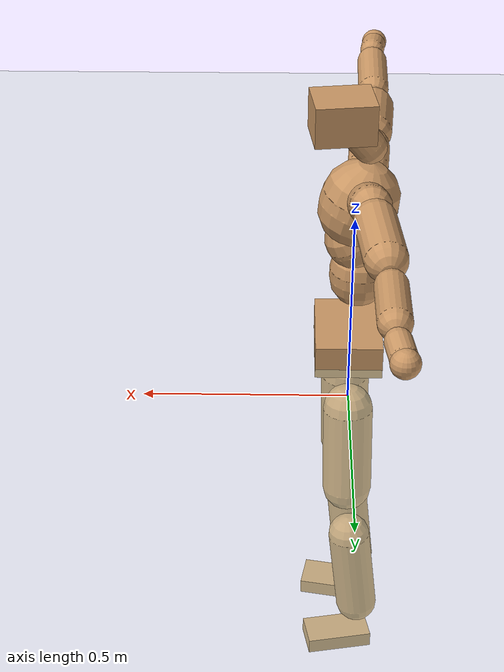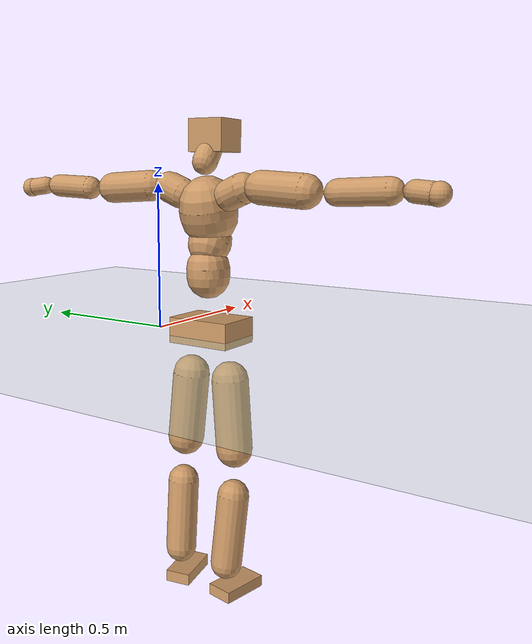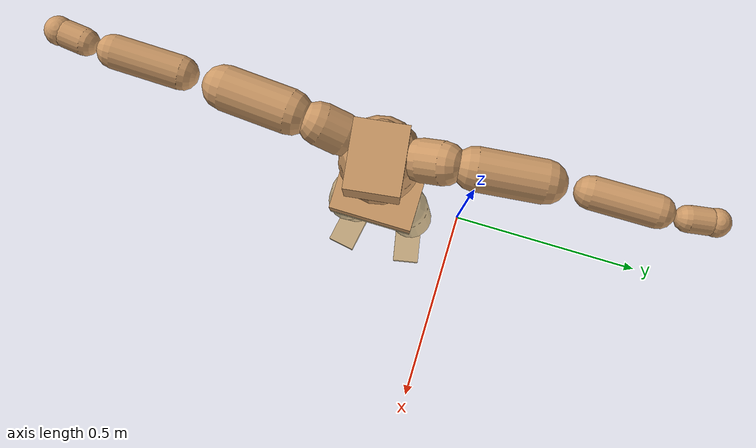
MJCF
<mujoco model="humanoid">
  <compiler coordinate="local" angle="radian"/>
  <default>
    <joint damping="0.0" armature="0.01" stiffness="0.0" limited="true"/>
    <geom conaffinity="1" condim="3" contype="7" margin="0.001" rgba="0.8 0.6 .4 1"/>
  </default>
  <asset>
    <texture type="skybox" builtin="gradient" rgb1=".4 .5 .6" rgb2="0 0 0" width="100" height="100"/>
    <texture builtin="flat" height="1278" mark="cross" markrgb="1 1 1" name="texgeom" random="0.01" rgb1="0.8 0.6 0.4" rgb2="0.8 0.6 0.4" type="cube" width="127"/>
    <texture builtin="checker" height="100" name="texplane" rgb1="0 0 0" rgb2="0.8 0.8 0.8" type="2d" width="100"/>
    <material name="MatPlane" reflectance="0.5" shininess="1" specular="1" texrepeat="60 60" texture="texplane"/>
    <material name="geom" texture="texgeom" texuniform="true"/>
  </asset>
  <worldbody>
    <light cutoff="100" diffuse="1 1 1" dir="-0 0 -1.3" directional="true" exponent="1" pos="0 0 1.3" specular=".1 .1 .1"/>
    <geom conaffinity="1" condim="3" name="floor" pos="0 0 0" rgba="0.8 0.9 0.8 1" size="100 100 .2" type="plane" material="MatPlane"/>
    <body name="Pelvis" pos="0.0006 -0.2249 0.0309">
      <freejoint name="Pelvis"/>
      <geom type="box" contype="1" conaffinity="1" density="500" pos="-0.0063 0.0000 -0.0135" size="0.0845 0.1135 0.0438" quat="1.0000 0.0000 0.0000 -0.0020" name="Pelvis"/>
      <body name="L_Hip" pos="-0.0083 0.0736 -0.097">
        <joint name="L_Hip_x" type="hinge" pos="0 0 0" axis="1 0 0" stiffness="800" damping="80" armature="0.02" range="-180.0000 180.0000"/>
        <joint name="L_Hip_y" type="hinge" pos="0 0 0" axis="0 1 0" stiffness="800" damping="80" armature="0.02" range="-180.0000 180.0000"/>
        <joint name="L_Hip_z" type="hinge" pos="0 0 0" axis="0 0 1" stiffness="800" damping="80" armature="0.02" range="-180.0000 180.0000"/>
        <geom type="capsule" contype="1" conaffinity="1" density="500" fromto="-0.0013 0.0071 -0.0801 -0.0053 0.0284 -0.3205" size="0.0639" name="L_Hip"/>
        <body name="L_Knee" pos="-0.0067 0.0355 -0.4007">
          <joint name="L_Knee_x" type="hinge" pos="0 0 0" axis="1 0 0" stiffness="800" damping="80" armature="0.02" range="-180.0000 180.0000"/>
          <joint name="L_Knee_y" type="hinge" pos="0 0 0" axis="0 1 0" stiffness="800" damping="80" armature="0.02" range="-180.0000 180.0000"/>
          <joint name="L_Knee_z" type="hinge" pos="0 0 0" axis="0 0 1" stiffness="800" damping="80" armature="0.02" range="-180.0000 180.0000"/>
          <geom type="capsule" contype="1" conaffinity="1" density="500" fromto="-0.0094 -0.0025 -0.0846 -0.0376 -0.0099 -0.3384" size="0.055" name="L_Knee"/>
          <body name="L_Ankle" pos="-0.0469 -0.0124 -0.4229">
            <joint name="L_Ankle_x" type="hinge" pos="0 0 0" axis="1 0 0" stiffness="800" damping="80" armature="0.02" range="-180.0000 180.0000"/>
            <joint name="L_Ankle_y" type="hinge" pos="0 0 0" axis="0 1 0" stiffness="800" damping="80" armature="0.02" range="-180.0000 180.0000"/>
            <joint name="L_Ankle_z" type="hinge" pos="0 0 0" axis="0 0 1" stiffness="800" damping="80" armature="0.02" range="-180.0000 180.0000"/>
            <geom type="box" contype="1" conaffinity="1" density="500" pos="0.0610 0.0115 -0.0294" size="0.0868 0.0456 0.0214" quat="0.9957 0.0000 0.0000 0.0931" name="L_Ankle"/>
            <body name="L_Toe" pos="0.1219 0.023 -0.0588">
              <joint name="L_Toe_x" type="hinge" pos="0 0 0" axis="1 0 0" stiffness="500" damping="50" armature="0.02" range="-180.0000 180.0000"/>
              <joint name="L_Toe_y" type="hinge" pos="0 0 0" axis="0 1 0" stiffness="500" damping="50" armature="0.02" range="-180.0000 180.0000"/>
              <joint name="L_Toe_z" type="hinge" pos="0 0 0" axis="0 0 1" stiffness="500" damping="50" armature="0.02" range="-180.0000 180.0000"/>
              <geom type="box" contype="1" conaffinity="1" density="500" pos="0.0000 0.0000 0.0291" size="0.0009 0.0023 0.0011" quat="0.9950 0.0000 0.0000 0.0994" name="L_Toe"/>
            </body>
          </body>
        </body>
      </body>
      <body name="R_Hip" pos="-0.0048 -0.0704 -0.0964">
        <joint name="R_Hip_x" type="hinge" pos="0 0 0" axis="1 0 0" stiffness="800" damping="80" armature="0.02" range="-180.0000 180.0000"/>
        <joint name="R_Hip_y" type="hinge" pos="0 0 0" axis="0 1 0" stiffness="800" damping="80" armature="0.02" range="-180.0000 180.0000"/>
        <joint name="R_Hip_z" type="hinge" pos="0 0 0" axis="0 0 1" stiffness="800" damping="80" armature="0.02" range="-180.0000 180.0000"/>
        <geom type="capsule" contype="1" conaffinity="1" density="500" fromto="-0.0019 -0.0082 -0.0817 -0.0076 -0.0329 -0.3267" size="0.0631" name="R_Hip"/>
        <body name="R_Knee" pos="-0.0094 -0.0412 -0.4084">
          <joint name="R_Knee_x" type="hinge" pos="0 0 0" axis="1 0 0" stiffness="800" damping="80" armature="0.02" range="-180.0000 180.0000"/>
          <joint name="R_Knee_y" type="hinge" pos="0 0 0" axis="0 1 0" stiffness="800" damping="80" armature="0.02" range="-180.0000 180.0000"/>
          <joint name="R_Knee_z" type="hinge" pos="0 0 0" axis="0 0 1" stiffness="800" damping="80" armature="0.02" range="-180.0000 180.0000"/>
          <geom type="capsule" contype="1" conaffinity="1" density="500" fromto="-0.0090 0.0031 -0.0846 -0.0361 0.0124 -0.3384" size="0.0553" name="R_Knee"/>
          <body name="R_Ankle" pos="-0.0452 0.0155 -0.4231">
            <joint name="R_Ankle_x" type="hinge" pos="0 0 0" axis="1 0 0" stiffness="800" damping="80" armature="0.02" range="-180.0000 180.0000"/>
            <joint name="R_Ankle_y" type="hinge" pos="0 0 0" axis="0 1 0" stiffness="800" damping="80" armature="0.02" range="-180.0000 180.0000"/>
            <joint name="R_Ankle_z" type="hinge" pos="0 0 0" axis="0 0 1" stiffness="800" damping="80" armature="0.02" range="-180.0000 180.0000"/>
            <geom type="box" contype="1" conaffinity="1" density="500" pos="0.0625 -0.0117 -0.0251" size="0.0881 0.0467 0.0209" quat="0.9957 0.0000 0.0000 -0.0925" name="R_Ankle"/>
            <body name="R_Toe" pos="0.1251 -0.0235 -0.0502">
              <joint name="R_Toe_x" type="hinge" pos="0 0 0" axis="1 0 0" stiffness="500" damping="50" armature="0.02" range="-180.0000 180.0000"/>
              <joint name="R_Toe_y" type="hinge" pos="0 0 0" axis="0 1 0" stiffness="500" damping="50" armature="0.02" range="-180.0000 180.0000"/>
              <joint name="R_Toe_z" type="hinge" pos="0 0 0" axis="0 0 1" stiffness="500" damping="50" armature="0.02" range="-180.0000 180.0000"/>
              <geom type="box" contype="1" conaffinity="1" density="500" pos="0.0000 0.0000 0.0274" size="0.0008 0.0023 0.0012" quat="0.9965 0.0000 0.0000 -0.0835" name="R_Toe"/>
            </body>
          </body>
        </body>
      </body>
      <body name="Torso" pos="-0.0249 -0.0031 0.1125">
        <joint name="Torso_x" type="hinge" pos="0 0 0" axis="1 0 0" stiffness="1000" damping="100" armature="0.02" range="-180.0000 180.0000"/>
        <joint name="Torso_y" type="hinge" pos="0 0 0" axis="0 1 0" stiffness="1000" damping="100" armature="0.02" range="-180.0000 180.0000"/>
        <joint name="Torso_z" type="hinge" pos="0 0 0" axis="0 0 1" stiffness="1000" damping="100" armature="0.02" range="-180.0000 180.0000"/>
        <geom type="capsule" contype="1" conaffinity="1" density="500" fromto="-0.0020 0.0022 0.0857 -0.0014 0.0015 0.0571" size="0.0726" name="Torso"/>
        <body name="Spine" pos="-0.0034 0.0037 0.1428">
          <joint name="Spine_x" type="hinge" pos="0 0 0" axis="1 0 0" stiffness="1000" damping="100" armature="0.02" range="-180.0000 180.0000"/>
          <joint name="Spine_y" type="hinge" pos="0 0 0" axis="0 1 0" stiffness="1000" damping="100" armature="0.02" range="-180.0000 180.0000"/>
          <joint name="Spine_z" type="hinge" pos="0 0 0" axis="0 0 1" stiffness="1000" damping="100" armature="0.02" range="-180.0000 180.0000"/>
          <geom type="capsule" contype="1" conaffinity="1" density="500" fromto="0.0184 0.0012 0.0312 0.0123 0.0008 0.0208" size="0.0719" name="Spine"/>
          <body name="Chest" pos="0.0307 0.002 0.052">
            <joint name="Chest_x" type="hinge" pos="0 0 0" axis="1 0 0" stiffness="1000" damping="100" armature="0.02" range="-180.0000 180.0000"/>
            <joint name="Chest_y" type="hinge" pos="0 0 0" axis="0 1 0" stiffness="1000" damping="100" armature="0.02" range="-180.0000 180.0000"/>
            <joint name="Chest_z" type="hinge" pos="0 0 0" axis="0 0 1" stiffness="1000" damping="100" armature="0.02" range="-180.0000 180.0000"/>
            <geom type="capsule" contype="1" conaffinity="1" density="500" fromto="-0.0274 -0.0003 0.0928 -0.0183 -0.0002 0.0619" size="0.0961" name="Chest"/>
            <body name="Neck" pos="-0.0536 -0.0005 0.2189">
              <joint name="Neck_x" type="hinge" pos="0 0 0" axis="1 0 0" stiffness="500" damping="50" armature="0.02" range="-180.0000 180.0000"/>
              <joint name="Neck_y" type="hinge" pos="0 0 0" axis="0 1 0" stiffness="500" damping="50" armature="0.02" range="-180.0000 180.0000"/>
              <joint name="Neck_z" type="hinge" pos="0 0 0" axis="0 0 1" stiffness="500" damping="50" armature="0.02" range="-180.0000 180.0000"/>
              <geom type="capsule" contype="1" conaffinity="1" density="500" fromto="0.0101 0.0010 0.0125 0.0405 0.0038 0.0499" size="0.0413" name="Neck"/>
              <body name="Head" pos="0.0506 0.0048 0.0624">
                <joint name="Head_x" type="hinge" pos="0 0 0" axis="1 0 0" stiffness="500" damping="50" armature="0.02" range="-180.0000 180.0000"/>
                <joint name="Head_y" type="hinge" pos="0 0 0" axis="0 1 0" stiffness="500" damping="50" armature="0.02" range="-180.0000 180.0000"/>
                <joint name="Head_z" type="hinge" pos="0 0 0" axis="0 0 1" stiffness="500" damping="50" armature="0.02" range="-180.0000 180.0000"/>
                <geom type="box" contype="1" conaffinity="1" density="500" pos="0.0263 0.0034 0.0322" size="0.0738 0.0585 0.0513" quat="0.9979 0.0000 0.0000 0.0642" name="Head"/>
              </body>
            </body>
            <body name="L_Thorax" pos="-0.0386 0.0763 0.1239">
              <joint name="L_Thorax_x" type="hinge" pos="0 0 0" axis="1 0 0" stiffness="500" damping="50" armature="0.02" range="-180.0000 180.0000"/>
              <joint name="L_Thorax_y" type="hinge" pos="0 0 0" axis="0 1 0" stiffness="500" damping="50" armature="0.02" range="-180.0000 180.0000"/>
              <joint name="L_Thorax_z" type="hinge" pos="0 0 0" axis="0 0 1" stiffness="500" damping="50" armature="0.02" range="-180.0000 180.0000"/>
              <geom type="capsule" contype="1" conaffinity="1" density="500" fromto="-0.0011 0.0165 0.0069 -0.0044 0.0661 0.0274" size="0.0507" name="L_Thorax"/>
              <body name="L_Shoulder" pos="-0.0055 0.0826 0.0343">
                <joint name="L_Shoulder_x" type="hinge" pos="0 0 0" axis="1 0 0" stiffness="500" damping="50" armature="0.02" range="-720.0000 720.0000"/>
                <joint name="L_Shoulder_y" type="hinge" pos="0 0 0" axis="0 1 0" stiffness="500" damping="50" armature="0.02" range="-720.0000 720.0000"/>
                <joint name="L_Shoulder_z" type="hinge" pos="0 0 0" axis="0 0 1" stiffness="500" damping="50" armature="0.02" range="-720.0000 720.0000"/>
                <geom type="capsule" contype="1" conaffinity="1" density="500" fromto="-0.0059 0.0527 -0.0029 -0.0235 0.2106 -0.0115" size="0.051" name="L_Shoulder"/>
                <body name="L_Elbow" pos="-0.0294 0.2633 -0.0144">
                  <joint name="L_Elbow_x" type="hinge" pos="0 0 0" axis="1 0 0" stiffness="500" damping="50" armature="0.02" range="-720.0000 720.0000"/>
                  <joint name="L_Elbow_y" type="hinge" pos="0 0 0" axis="0 1 0" stiffness="500" damping="50" armature="0.02" range="-720.0000 720.0000"/>
                  <joint name="L_Elbow_z" type="hinge" pos="0 0 0" axis="0 0 1" stiffness="500" damping="50" armature="0.02" range="-720.0000 720.0000"/>
                  <geom type="capsule" contype="1" conaffinity="1" density="500" fromto="0.0001 0.0505 0.0021 0.0003 0.2018 0.0085" size="0.0391" name="L_Elbow"/>
                  <body name="L_Wrist" pos="0.0003 0.2523 0.0106">
                    <joint name="L_Wrist_x" type="hinge" pos="0 0 0" axis="1 0 0" stiffness="300" damping="30" armature="0.02" range="-180.0000 180.0000"/>
                    <joint name="L_Wrist_y" type="hinge" pos="0 0 0" axis="0 1 0" stiffness="300" damping="30" armature="0.02" range="-180.0000 180.0000"/>
                    <joint name="L_Wrist_z" type="hinge" pos="0 0 0" axis="0 0 1" stiffness="300" damping="30" armature="0.02" range="-180.0000 180.0000"/>
                    <geom type="capsule" contype="1" conaffinity="1" density="500" fromto="-0.0028 0.0164 -0.0020 -0.0111 0.0656 -0.0080" size="0.0309" name="L_Wrist"/>
                    <body name="L_Hand" pos="-0.0139 0.082 -0.01">
                      <joint name="L_Hand_x" type="hinge" pos="0 0 0" axis="1 0 0" stiffness="300" damping="30" armature="0.02" range="-180.0000 180.0000"/>
                      <joint name="L_Hand_y" type="hinge" pos="0 0 0" axis="0 1 0" stiffness="300" damping="30" armature="0.02" range="-180.0000 180.0000"/>
                      <joint name="L_Hand_z" type="hinge" pos="0 0 0" axis="0 0 1" stiffness="300" damping="30" armature="0.02" range="-180.0000 180.0000"/>
                      <geom type="sphere" contype="1" conaffinity="1" density="500" size="0.0331" pos="0.0000 0.0000 0.0000" name="L_Hand"/>
                    </body>
                  </body>
                </body>
              </body>
            </body>
            <body name="R_Thorax" pos="-0.0449 -0.0775 0.1212">
              <joint name="R_Thorax_x" type="hinge" pos="0 0 0" axis="1 0 0" stiffness="500" damping="50" armature="0.02" range="-180.0000 180.0000"/>
              <joint name="R_Thorax_y" type="hinge" pos="0 0 0" axis="0 1 0" stiffness="500" damping="50" armature="0.02" range="-180.0000 180.0000"/>
              <joint name="R_Thorax_z" type="hinge" pos="0 0 0" axis="0 0 1" stiffness="500" damping="50" armature="0.02" range="-180.0000 180.0000"/>
              <geom type="capsule" contype="1" conaffinity="1" density="500" fromto="-0.0017 -0.0178 0.0070 -0.0066 -0.0713 0.0282" size="0.0501" name="R_Thorax"/>
              <body name="R_Shoulder" pos="-0.0083 -0.0891 0.0352">
                <joint name="R_Shoulder_x" type="hinge" pos="0 0 0" axis="1 0 0" stiffness="500" damping="50" armature="0.02" range="-720.0000 720.0000"/>
                <joint name="R_Shoulder_y" type="hinge" pos="0 0 0" axis="0 1 0" stiffness="500" damping="50" armature="0.02" range="-720.0000 720.0000"/>
                <joint name="R_Shoulder_z" type="hinge" pos="0 0 0" axis="0 0 1" stiffness="500" damping="50" armature="0.02" range="-720.0000 720.0000"/>
                <geom type="capsule" contype="1" conaffinity="1" density="500" fromto="-0.0044 -0.0523 -0.0032 -0.0174 -0.2094 -0.0126" size="0.0525" name="R_Shoulder"/>
                <body name="R_Elbow" pos="-0.0218 -0.2617 -0.0158">
                  <joint name="R_Elbow_x" type="hinge" pos="0 0 0" axis="1 0 0" stiffness="500" damping="50" armature="0.02" range="-720.0000 720.0000"/>
                  <joint name="R_Elbow_y" type="hinge" pos="0 0 0" axis="0 1 0" stiffness="500" damping="50" armature="0.02" range="-720.0000 720.0000"/>
                  <joint name="R_Elbow_z" type="hinge" pos="0 0 0" axis="0 0 1" stiffness="500" damping="50" armature="0.02" range="-720.0000 720.0000"/>
                  <geom type="capsule" contype="1" conaffinity="1" density="500" fromto="-0.0009 -0.0526 0.0020 -0.0035 -0.2104 0.0081" size="0.0394" name="R_Elbow"/>
                  <body name="R_Wrist" pos="-0.0044 -0.263 0.0101">
                    <joint name="R_Wrist_x" type="hinge" pos="0 0 0" axis="1 0 0" stiffness="300" damping="30" armature="0.02" range="-180.0000 180.0000"/>
                    <joint name="R_Wrist_y" type="hinge" pos="0 0 0" axis="0 1 0" stiffness="300" damping="30" armature="0.02" range="-180.0000 180.0000"/>
                    <joint name="R_Wrist_z" type="hinge" pos="0 0 0" axis="0 0 1" stiffness="300" damping="30" armature="0.02" range="-180.0000 180.0000"/>
                    <geom type="capsule" contype="1" conaffinity="1" density="500" fromto="-0.0022 -0.0167 -0.0015 -0.0087 -0.0670 -0.0059" size="0.0318" name="R_Wrist"/>
                    <body name="R_Hand" pos="-0.0109 -0.0837 -0.0073">
                      <joint name="R_Hand_x" type="hinge" pos="0 0 0" axis="1 0 0" stiffness="300" damping="30" armature="0.02" range="-180.0000 180.0000"/>
                      <joint name="R_Hand_y" type="hinge" pos="0 0 0" axis="0 1 0" stiffness="300" damping="30" armature="0.02" range="-180.0000 180.0000"/>
                      <joint name="R_Hand_z" type="hinge" pos="0 0 0" axis="0 0 1" stiffness="300" damping="30" armature="0.02" range="-180.0000 180.0000"/>
                      <geom type="sphere" contype="1" conaffinity="1" density="500" size="0.0336" pos="0.0000 0.0000 0.0000" name="R_Hand"/>
                    </body>
                  </body>
                </body>
              </body>
            </body>
          </body>
        </body>
      </body>
    </body>
  </worldbody>
  <actuator>
    <motor name="L_Hip_x" joint="L_Hip_x" gear="500"/>
    <motor name="L_Hip_y" joint="L_Hip_y" gear="500"/>
    <motor name="L_Hip_z" joint="L_Hip_z" gear="500"/>
    <motor name="L_Knee_x" joint="L_Knee_x" gear="500"/>
    <motor name="L_Knee_y" joint="L_Knee_y" gear="500"/>
    <motor name="L_Knee_z" joint="L_Knee_z" gear="500"/>
    <motor name="L_Ankle_x" joint="L_Ankle_x" gear="500"/>
    <motor name="L_Ankle_y" joint="L_Ankle_y" gear="500"/>
    <motor name="L_Ankle_z" joint="L_Ankle_z" gear="500"/>
    <motor name="L_Toe_x" joint="L_Toe_x" gear="500"/>
    <motor name="L_Toe_y" joint="L_Toe_y" gear="500"/>
    <motor name="L_Toe_z" joint="L_Toe_z" gear="500"/>
    <motor name="R_Hip_x" joint="R_Hip_x" gear="500"/>
    <motor name="R_Hip_y" joint="R_Hip_y" gear="500"/>
    <motor name="R_Hip_z" joint="R_Hip_z" gear="500"/>
    <motor name="R_Knee_x" joint="R_Knee_x" gear="500"/>
    <motor name="R_Knee_y" joint="R_Knee_y" gear="500"/>
    <motor name="R_Knee_z" joint="R_Knee_z" gear="500"/>
    <motor name="R_Ankle_x" joint="R_Ankle_x" gear="500"/>
    <motor name="R_Ankle_y" joint="R_Ankle_y" gear="500"/>
    <motor name="R_Ankle_z" joint="R_Ankle_z" gear="500"/>
    <motor name="R_Toe_x" joint="R_Toe_x" gear="500"/>
    <motor name="R_Toe_y" joint="R_Toe_y" gear="500"/>
    <motor name="R_Toe_z" joint="R_Toe_z" gear="500"/>
    <motor name="Torso_x" joint="Torso_x" gear="500"/>
    <motor name="Torso_y" joint="Torso_y" gear="500"/>
    <motor name="Torso_z" joint="Torso_z" gear="500"/>
    <motor name="Spine_x" joint="Spine_x" gear="500"/>
    <motor name="Spine_y" joint="Spine_y" gear="500"/>
    <motor name="Spine_z" joint="Spine_z" gear="500"/>
    <motor name="Chest_x" joint="Chest_x" gear="500"/>
    <motor name="Chest_y" joint="Chest_y" gear="500"/>
    <motor name="Chest_z" joint="Chest_z" gear="500"/>
    <motor name="Neck_x" joint="Neck_x" gear="500"/>
    <motor name="Neck_y" joint="Neck_y" gear="500"/>
    <motor name="Neck_z" joint="Neck_z" gear="500"/>
    <motor name="Head_x" joint="Head_x" gear="500"/>
    <motor name="Head_y" joint="Head_y" gear="500"/>
    <motor name="Head_z" joint="Head_z" gear="500"/>
    <motor name="L_Thorax_x" joint="L_Thorax_x" gear="500"/>
    <motor name="L_Thorax_y" joint="L_Thorax_y" gear="500"/>
    <motor name="L_Thorax_z" joint="L_Thorax_z" gear="500"/>
    <motor name="L_Shoulder_x" joint="L_Shoulder_x" gear="500"/>
    <motor name="L_Shoulder_y" joint="L_Shoulder_y" gear="500"/>
    <motor name="L_Shoulder_z" joint="L_Shoulder_z" gear="500"/>
    <motor name="L_Elbow_x" joint="L_Elbow_x" gear="500"/>
    <motor name="L_Elbow_y" joint="L_Elbow_y" gear="500"/>
    <motor name="L_Elbow_z" joint="L_Elbow_z" gear="500"/>
    <motor name="L_Wrist_x" joint="L_Wrist_x" gear="500"/>
    <motor name="L_Wrist_y" joint="L_Wrist_y" gear="500"/>
    <motor name="L_Wrist_z" joint="L_Wrist_z" gear="500"/>
    <motor name="L_Hand_x" joint="L_Hand_x" gear="500"/>
    <motor name="L_Hand_y" joint="L_Hand_y" gear="500"/>
    <motor name="L_Hand_z" joint="L_Hand_z" gear="500"/>
    <motor name="R_Thorax_x" joint="R_Thorax_x" gear="500"/>
    <motor name="R_Thorax_y" joint="R_Thorax_y" gear="500"/>
    <motor name="R_Thorax_z" joint="R_Thorax_z" gear="500"/>
    <motor name="R_Shoulder_x" joint="R_Shoulder_x" gear="500"/>
    <motor name="R_Shoulder_y" joint="R_Shoulder_y" gear="500"/>
    <motor name="R_Shoulder_z" joint="R_Shoulder_z" gear="500"/>
    <motor name="R_Elbow_x" joint="R_Elbow_x" gear="500"/>
    <motor name="R_Elbow_y" joint="R_Elbow_y" gear="500"/>
    <motor name="R_Elbow_z" joint="R_Elbow_z" gear="500"/>
    <motor name="R_Wrist_x" joint="R_Wrist_x" gear="500"/>
    <motor name="R_Wrist_y" joint="R_Wrist_y" gear="500"/>
    <motor name="R_Wrist_z" joint="R_Wrist_z" gear="500"/>
    <motor name="R_Hand_x" joint="R_Hand_x" gear="500"/>
    <motor name="R_Hand_y" joint="R_Hand_y" gear="500"/>
    <motor name="R_Hand_z" joint="R_Hand_z" gear="500"/>
  </actuator>
  <contact>
    <exclude body1="Torso" body2="Chest"/>
    <exclude body1="Head" body2="Chest"/>
    <exclude body1="R_Knee" body2="R_Toe"/>
    <exclude body1="R_Knee" body2="L_Ankle"/>
    <exclude body1="R_Knee" body2="L_Toe"/>
    <exclude body1="L_Knee" body2="L_Toe"/>
    <exclude body1="L_Knee" body2="R_Ankle"/>
    <exclude body1="L_Knee" body2="R_Toe"/>
    <exclude body1="L_Shoulder" body2="Chest"/>
    <exclude body1="R_Shoulder" body2="Chest"/>
  </contact>
  <sensor/>
  <size njmax="700" nconmax="700"/>
</mujoco>
